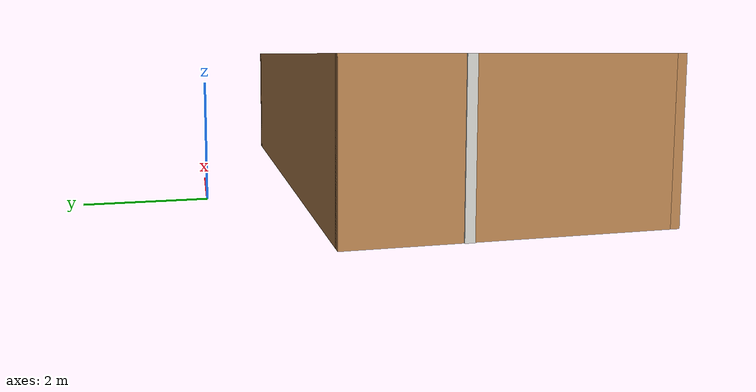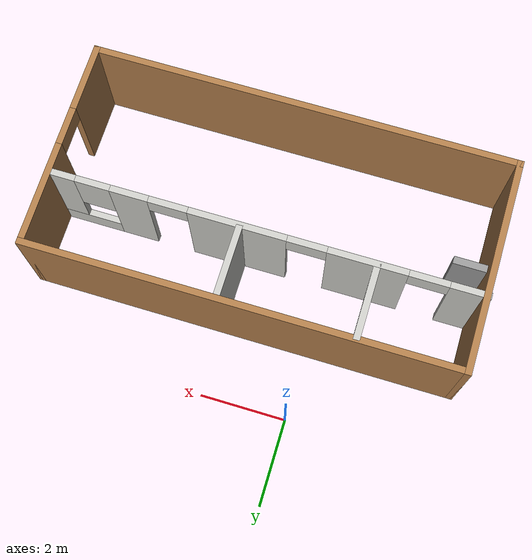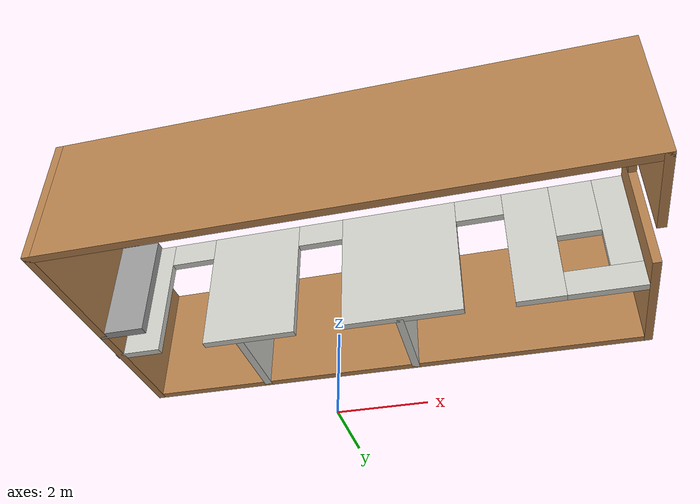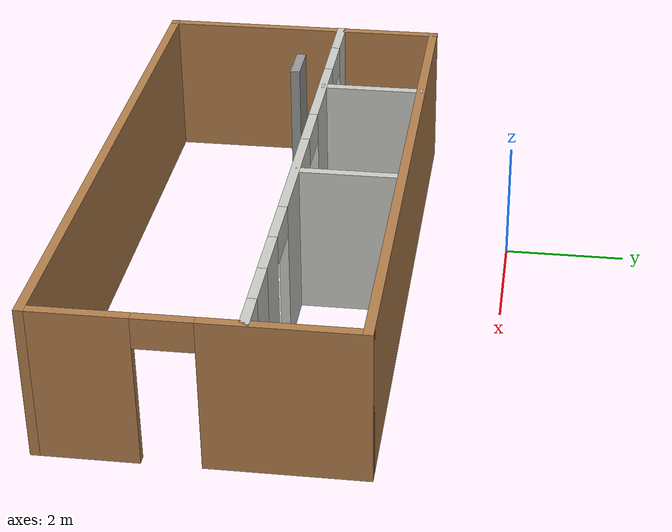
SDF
<?xml version='1.0'?>
<sdf version='1.7'>
  <model name='Building'>
    <pose>1.495 -3.2775 0 0 -0 0</pose>
    <link name='Door_3'>
      <collision name='Door_3_Collision'>
        <geometry>
          <box>
            <size>0.9 0.17 2</size>
          </box>
        </geometry>
        <pose>0 0 1 0 -0 0</pose>
      </collision>
      <visual name='Door_3_Visual'>
        <pose>0 0 1 0 -0 0</pose>
        <geometry>
          <box>
            <size>0.9 0.17 2</size>
          </box>
        </geometry>
        <material>
          <script>
            <uri>file://media/materials/scripts/gazebo.material</uri>
            <name>Gazebo/Grey</name>
          </script>
        </material>
      </visual>
      <pose>-4.525 -0.8125 0 0 -0 0</pose>
    </link>
    <link name='Wall_0'>
      <collision name='Wall_0_Collision'>
        <geometry>
          <box>
            <size>10 0.15 2.5</size>
          </box>
        </geometry>
        <pose>0 0 1.25 0 -0 0</pose>
      </collision>
      <visual name='Wall_0_Visual'>
        <pose>0 0 1.25 0 -0 0</pose>
        <geometry>
          <box>
            <size>10 0.15 2.5</size>
          </box>
        </geometry>
        <material>
          <script>
            <uri>file://media/materials/scripts/gazebo.material</uri>
            <name>Gazebo/Wood</name>
          </script>
          <ambient>1 1 1 1</ambient>
        </material>
        <meta>
          <layer>0</layer>
        </meta>
      </visual>
      <pose>0.01 1.6475 0 0 -0 0</pose>
    </link>
    <link name='Wall_1'>
      <pose>4.935 -0.7775 0 0 -0 -1.5708</pose>
      <visual name='Wall_1_Visual_0'>
        <pose>-1.2675 0 1.25 0 -0 0</pose>
        <geometry>
          <box>
            <size>2.465 0.15 2.5</size>
          </box>
        </geometry>
        <material>
          <script>
            <uri>file://media/materials/scripts/gazebo.material</uri>
            <name>Gazebo/Wood</name>
          </script>
          <ambient>1 1 1 1</ambient>
        </material>
        <meta>
          <layer>0</layer>
        </meta>
      </visual>
      <collision name='Wall_1_Collision_0'>
        <geometry>
          <box>
            <size>2.465 0.15 2.5</size>
          </box>
        </geometry>
        <pose>-1.2675 0 1.25 0 -0 0</pose>
      </collision>
      <visual name='Wall_1_Visual_1'>
        <pose>1.6825 0 1.25 0 -0 0</pose>
        <geometry>
          <box>
            <size>1.635 0.15 2.5</size>
          </box>
        </geometry>
        <material>
          <script>
            <uri>file://media/materials/scripts/gazebo.material</uri>
            <name>Gazebo/Wood</name>
          </script>
          <ambient>1 1 1 1</ambient>
        </material>
        <meta>
          <layer>0</layer>
        </meta>
      </visual>
      <collision name='Wall_1_Collision_1'>
        <geometry>
          <box>
            <size>1.635 0.15 2.5</size>
          </box>
        </geometry>
        <pose>1.6825 0 1.25 0 -0 0</pose>
      </collision>
      <visual name='Wall_1_Visual_2'>
        <pose>0.415 0 2.25 0 -0 0</pose>
        <geometry>
          <box>
            <size>0.9 0.15 0.5</size>
          </box>
        </geometry>
        <material>
          <script>
            <uri>file://media/materials/scripts/gazebo.material</uri>
            <name>Gazebo/Wood</name>
          </script>
          <ambient>1 1 1 1</ambient>
        </material>
        <meta>
          <layer>0</layer>
        </meta>
      </visual>
      <collision name='Wall_1_Collision_2'>
        <geometry>
          <box>
            <size>0.9 0.15 0.5</size>
          </box>
        </geometry>
        <pose>0.415 0 2.25 0 -0 0</pose>
      </collision>
    </link>
    <link name='Wall_10'>
      <collision name='Wall_10_Collision'>
        <geometry>
          <box>
            <size>1.75 0.15 2.5</size>
          </box>
        </geometry>
        <pose>0 0 1.25 0 -0 0</pose>
      </collision>
      <visual name='Wall_10_Visual'>
        <pose>0 0 1.25 0 -0 0</pose>
        <geometry>
          <box>
            <size>1.75 0.15 2.5</size>
          </box>
        </geometry>
        <material>
          <script>
            <uri>file://media/materials/scripts/gazebo.material</uri>
            <name>Gazebo/CeilingTiled</name>
          </script>
          <ambient>1 1 1 1</ambient>
        </material>
        <meta>
          <layer>0</layer>
        </meta>
      </visual>
      <pose>0.545 0.8175 0 0 -0 -1.5708</pose>
    </link>
    <link name='Wall_2'>
      <collision name='Wall_2_Collision'>
        <geometry>
          <box>
            <size>10 0.15 2.5</size>
          </box>
        </geometry>
        <pose>0 0 1.25 0 -0 0</pose>
      </collision>
      <visual name='Wall_2_Visual'>
        <pose>0 0 1.25 0 -0 0</pose>
        <geometry>
          <box>
            <size>10 0.15 2.5</size>
          </box>
        </geometry>
        <material>
          <script>
            <uri>file://media/materials/scripts/gazebo.material</uri>
            <name>Gazebo/Wood</name>
          </script>
          <ambient>1 1 1 1</ambient>
        </material>
        <meta>
          <layer>0</layer>
        </meta>
      </visual>
      <pose>0.01 -3.2025 0 0 -0 3.14159</pose>
    </link>
    <link name='Wall_3'>
      <collision name='Wall_3_Collision'>
        <geometry>
          <box>
            <size>5 0.15 2.5</size>
          </box>
        </geometry>
        <pose>0 0 1.25 0 -0 0</pose>
      </collision>
      <visual name='Wall_3_Visual'>
        <pose>0 0 1.25 0 -0 0</pose>
        <geometry>
          <box>
            <size>5 0.15 2.5</size>
          </box>
        </geometry>
        <material>
          <script>
            <uri>file://media/materials/scripts/gazebo.material</uri>
            <name>Gazebo/Wood</name>
          </script>
          <ambient>1 1 1 1</ambient>
        </material>
        <meta>
          <layer>0</layer>
        </meta>
      </visual>
      <pose>-4.915 -0.7775 0 0 -0 1.5708</pose>
    </link>
    <link name='Wall_6'>
      <pose>-0.01 -0.0625 0 0 -0 0</pose>
      <visual name='Wall_6_Visual_0'>
        <pose>-4.5525 0 1.25 0 -0 0</pose>
        <geometry>
          <box>
            <size>0.895 0.15 2.5</size>
          </box>
        </geometry>
        <material>
          <script>
            <uri>file://media/materials/scripts/gazebo.material</uri>
            <name>Gazebo/CeilingTiled</name>
          </script>
          <ambient>1 1 1 1</ambient>
        </material>
        <meta>
          <layer>0</layer>
        </meta>
      </visual>
      <collision name='Wall_6_Collision_0'>
        <geometry>
          <box>
            <size>0.895 0.15 2.5</size>
          </box>
        </geometry>
        <pose>-4.5525 0 1.25 0 -0 0</pose>
      </collision>
      <visual name='Wall_6_Visual_1'>
        <pose>-2.305 0 1.25 0 -0 0</pose>
        <geometry>
          <box>
            <size>1.8 0.15 2.5</size>
          </box>
        </geometry>
        <material>
          <script>
            <uri>file://media/materials/scripts/gazebo.material</uri>
            <name>Gazebo/CeilingTiled</name>
          </script>
          <ambient>1 1 1 1</ambient>
        </material>
        <meta>
          <layer>0</layer>
        </meta>
      </visual>
      <collision name='Wall_6_Collision_1'>
        <geometry>
          <box>
            <size>1.8 0.15 2.5</size>
          </box>
        </geometry>
        <pose>-2.305 0 1.25 0 -0 0</pose>
      </collision>
      <visual name='Wall_6_Visual_2'>
        <pose>0.615 0 1.25 0 -0 0</pose>
        <geometry>
          <box>
            <size>2.24 0.15 2.5</size>
          </box>
        </geometry>
        <material>
          <script>
            <uri>file://media/materials/scripts/gazebo.material</uri>
            <name>Gazebo/CeilingTiled</name>
          </script>
          <ambient>1 1 1 1</ambient>
        </material>
        <meta>
          <layer>0</layer>
        </meta>
      </visual>
      <collision name='Wall_6_Collision_2'>
        <geometry>
          <box>
            <size>2.24 0.15 2.5</size>
          </box>
        </geometry>
        <pose>0.615 0 1.25 0 -0 0</pose>
      </collision>
      <visual name='Wall_6_Visual_3'>
        <pose>3.075 0 1.25 0 -0 0</pose>
        <geometry>
          <box>
            <size>0.88 0.15 2.5</size>
          </box>
        </geometry>
        <material>
          <script>
            <uri>file://media/materials/scripts/gazebo.material</uri>
            <name>Gazebo/CeilingTiled</name>
          </script>
          <ambient>1 1 1 1</ambient>
        </material>
        <meta>
          <layer>0</layer>
        </meta>
      </visual>
      <collision name='Wall_6_Collision_3'>
        <geometry>
          <box>
            <size>0.88 0.15 2.5</size>
          </box>
        </geometry>
        <pose>3.075 0 1.25 0 -0 0</pose>
      </collision>
      <visual name='Wall_6_Visual_4'>
        <pose>4.2575 0 0.25 0 -0 0</pose>
        <geometry>
          <box>
            <size>1.485 0.15 0.5</size>
          </box>
        </geometry>
        <material>
          <script>
            <uri>file://media/materials/scripts/gazebo.material</uri>
            <name>Gazebo/CeilingTiled</name>
          </script>
          <ambient>1 1 1 1</ambient>
        </material>
        <meta>
          <layer>0</layer>
        </meta>
      </visual>
      <collision name='Wall_6_Collision_4'>
        <geometry>
          <box>
            <size>1.485 0.15 0.5</size>
          </box>
        </geometry>
        <pose>4.2575 0 0.25 0 -0 0</pose>
      </collision>
      <visual name='Wall_6_Visual_5'>
        <pose>4.6575 0 1.5 0 -0 0</pose>
        <geometry>
          <box>
            <size>0.685 0.15 2</size>
          </box>
        </geometry>
        <material>
          <script>
            <uri>file://media/materials/scripts/gazebo.material</uri>
            <name>Gazebo/CeilingTiled</name>
          </script>
          <ambient>1 1 1 1</ambient>
        </material>
        <meta>
          <layer>0</layer>
        </meta>
      </visual>
      <collision name='Wall_6_Collision_5'>
        <geometry>
          <box>
            <size>0.685 0.15 2</size>
          </box>
        </geometry>
        <pose>4.6575 0 1.5 0 -0 0</pose>
      </collision>
      <visual name='Wall_6_Visual_6'>
        <pose>3.915 0 1.9 0 -0 0</pose>
        <geometry>
          <box>
            <size>0.8 0.15 1.2</size>
          </box>
        </geometry>
        <material>
          <script>
            <uri>file://media/materials/scripts/gazebo.material</uri>
            <name>Gazebo/CeilingTiled</name>
          </script>
          <ambient>1 1 1 1</ambient>
        </material>
        <meta>
          <layer>0</layer>
        </meta>
      </visual>
      <collision name='Wall_6_Collision_6'>
        <geometry>
          <box>
            <size>0.8 0.15 1.2</size>
          </box>
        </geometry>
        <pose>3.915 0 1.9 0 -0 0</pose>
      </collision>
      <visual name='Wall_6_Visual_7'>
        <pose>-3.655 0 2.25 0 -0 0</pose>
        <geometry>
          <box>
            <size>0.9 0.15 0.5</size>
          </box>
        </geometry>
        <material>
          <script>
            <uri>file://media/materials/scripts/gazebo.material</uri>
            <name>Gazebo/CeilingTiled</name>
          </script>
          <ambient>1 1 1 1</ambient>
        </material>
        <meta>
          <layer>0</layer>
        </meta>
      </visual>
      <collision name='Wall_6_Collision_7'>
        <geometry>
          <box>
            <size>0.9 0.15 0.5</size>
          </box>
        </geometry>
        <pose>-3.655 0 2.25 0 -0 0</pose>
      </collision>
      <visual name='Wall_6_Visual_8'>
        <pose>-0.955 0 2.25 0 -0 0</pose>
        <geometry>
          <box>
            <size>0.9 0.15 0.5</size>
          </box>
        </geometry>
        <material>
          <script>
            <uri>file://media/materials/scripts/gazebo.material</uri>
            <name>Gazebo/CeilingTiled</name>
          </script>
          <ambient>1 1 1 1</ambient>
        </material>
        <meta>
          <layer>0</layer>
        </meta>
      </visual>
      <collision name='Wall_6_Collision_8'>
        <geometry>
          <box>
            <size>0.9 0.15 0.5</size>
          </box>
        </geometry>
        <pose>-0.955 0 2.25 0 -0 0</pose>
      </collision>
      <visual name='Wall_6_Visual_9'>
        <pose>2.185 0 2.25 0 -0 0</pose>
        <geometry>
          <box>
            <size>0.9 0.15 0.5</size>
          </box>
        </geometry>
        <material>
          <script>
            <uri>file://media/materials/scripts/gazebo.material</uri>
            <name>Gazebo/CeilingTiled</name>
          </script>
          <ambient>1 1 1 1</ambient>
        </material>
        <meta>
          <layer>0</layer>
        </meta>
      </visual>
      <collision name='Wall_6_Collision_9'>
        <geometry>
          <box>
            <size>0.9 0.15 0.5</size>
          </box>
        </geometry>
        <pose>2.185 0 2.25 0 -0 0</pose>
      </collision>
    </link>
    <link name='Wall_8'>
      <collision name='Wall_8_Collision'>
        <geometry>
          <box>
            <size>1.75 0.15 2.5</size>
          </box>
        </geometry>
        <pose>0 0 1.25 0 -0 0</pose>
      </collision>
      <visual name='Wall_8_Visual'>
        <pose>0 0 1.25 0 -0 0</pose>
        <geometry>
          <box>
            <size>1.75 0.15 2.5</size>
          </box>
        </geometry>
        <material>
          <script>
            <uri>file://media/materials/scripts/gazebo.material</uri>
            <name>Gazebo/CeilingTiled</name>
          </script>
          <ambient>1 1 1 1</ambient>
        </material>
        <meta>
          <layer>0</layer>
        </meta>
      </visual>
      <pose>-2.525 0.7975 0 0 -0 -1.5708</pose>
    </link>
    <static>1</static>
  </model>
</sdf>
